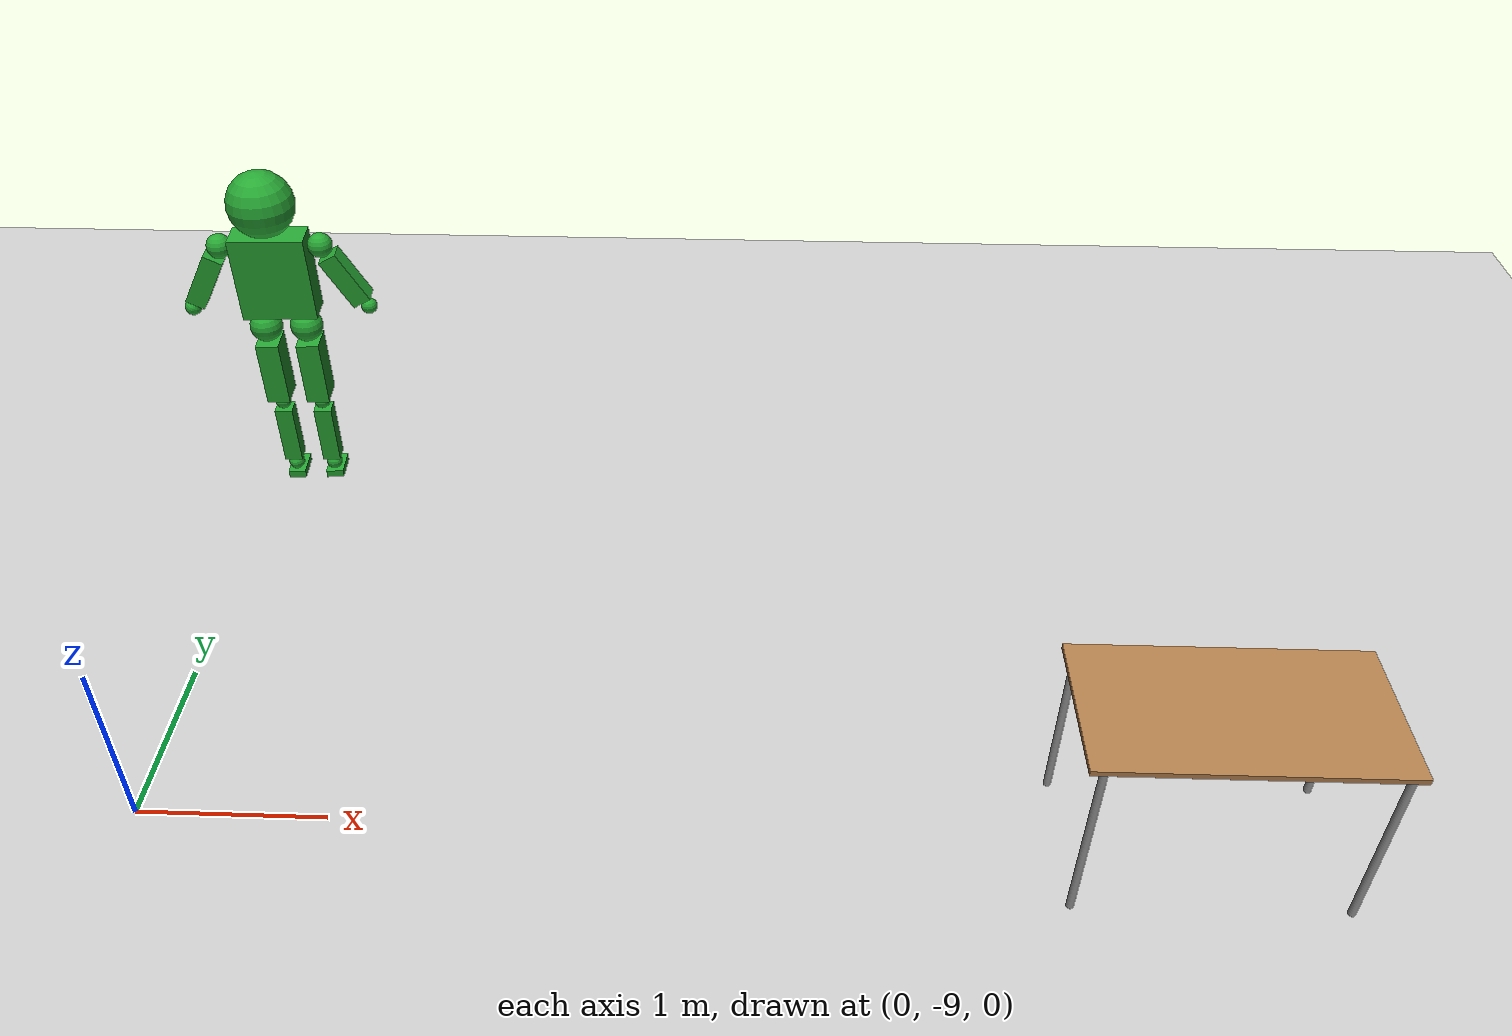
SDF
<sdf version="1.6">
 <world name="Apartment 1023">
  <model name="ground_plane">
   <static>1</static>
   <link name="link">
    <collision name="collision">
     <geometry><plane><normal>0 0 1</normal><size>100 100</size></plane></geometry>
     <surface><friction><ode><mu>100</mu><mu2>50</mu2></ode></friction></surface>
    </collision>
    <visual name="visual">
     <cast_shadows>0</cast_shadows>
     <geometry><plane><normal>0 0 1</normal><size>100 100</size></plane></geometry>
     <material>
      <script><uri>file://media/materials/scripts/gazebo.material</uri><name>Gazebo/Grey</name></script>
     </material>
    </visual>
   </link>
  </model>
  <model name="HumanoidRobot">
   <static>1</static>
   <link name="link_Foot_RT">
    <pose>0.98187 -0.173198 -0.379096 0 -0 0</pose>
    <inertial>
     <mass>1</mass>
     <inertia>
      <ixx>0.166667</ixx>
      <ixy>0</ixy>
      <ixz>0</ixz>
      <iyy>0.166667</iyy>
      <iyz>0</iyz>
      <izz>0.166667</izz>
     </inertia>
    </inertial>
    <visual name="visual">
     <geometry><box><size>0.19 0.11 0.05</size></box></geometry>
     <material>
      <lighting>1</lighting>
      <script><uri>file://media/materials/scripts/gazebo.material</uri><name>Gazebo/Green</name></script>
      <emissive>0 0 0 1</emissive>
      <shader type="vertex"><normal_map>__default__</normal_map></shader>
     </material>
    </visual>
    <collision name="collision">
     <geometry><box><size>0.19 0.11 0.05</size></box></geometry>
     <surface>
      <friction>
       <ode><mu>1</mu><mu2>1</mu2><fdir1>0 0 0</fdir1><slip1>0</slip1><slip2>0</slip2></ode>
       <torsional>
        <coefficient>1</coefficient>
        <patch_radius>0</patch_radius>
        <surface_radius>0</surface_radius>
        <use_patch_radius>1</use_patch_radius>
        <ode><slip>0</slip></ode>
       </torsional>
      </friction>
      <bounce><restitution_coefficient>0</restitution_coefficient><threshold>1e+06</threshold></bounce>
      <contact>
       <collide_without_contact>0</collide_without_contact>
       <collide_without_contact_bitmask>1</collide_without_contact_bitmask>
       <collide_bitmask>1</collide_bitmask>
       <ode>
        <soft_cfm>0</soft_cfm>
        <soft_erp>0.2</soft_erp>
        <kp>1e+13</kp>
        <kd>1</kd>
        <max_vel>0.01</max_vel>
        <min_depth>0</min_depth>
       </ode>
       <bullet>
        <split_impulse>1</split_impulse>
        <split_impulse_penetration_threshold>-0.01</split_impulse_penetration_threshold>
        <soft_cfm>0</soft_cfm>
        <soft_erp>0.2</soft_erp>
        <kp>1e+13</kp>
        <kd>1</kd>
       </bullet>
      </contact>
     </surface>
    </collision>
   </link>
   <link name="link_Ankle_RT">
    <pose>0.93687 -0.173198 -0.304096 0 -0 0</pose>
    <inertial>
     <mass>1</mass>
     <inertia><ixx>0.1</ixx><ixy>0</ixy><ixz>0</ixz><iyy>0.1</iyy><iyz>0</iyz><izz>0.1</izz></inertia>
    </inertial>
    <visual name="visual">
     <geometry><sphere><radius>0.05</radius></sphere></geometry>
     <material>
      <lighting>1</lighting>
      <script><uri>file://media/materials/scripts/gazebo.material</uri><name>Gazebo/Green</name></script>
      <emissive>0 0 0 1</emissive>
      <shader type="vertex"><normal_map>__default__</normal_map></shader>
     </material>
    </visual>
    <collision name="collision">
     <geometry><sphere><radius>0.05</radius></sphere></geometry>
     <surface>
      <friction>
       <ode><mu>1</mu><mu2>1</mu2><fdir1>0 0 0</fdir1><slip1>0</slip1><slip2>0</slip2></ode>
       <torsional>
        <coefficient>1</coefficient>
        <patch_radius>0</patch_radius>
        <surface_radius>0</surface_radius>
        <use_patch_radius>1</use_patch_radius>
        <ode><slip>0</slip></ode>
       </torsional>
      </friction>
      <bounce><restitution_coefficient>0</restitution_coefficient><threshold>1e+06</threshold></bounce>
      <contact>
       <collide_without_contact>0</collide_without_contact>
       <collide_without_contact_bitmask>1</collide_without_contact_bitmask>
       <collide_bitmask>1</collide_bitmask>
       <ode>
        <soft_cfm>0</soft_cfm>
        <soft_erp>0.2</soft_erp>
        <kp>1e+13</kp>
        <kd>1</kd>
        <max_vel>0.01</max_vel>
        <min_depth>0</min_depth>
       </ode>
       <bullet>
        <split_impulse>1</split_impulse>
        <split_impulse_penetration_threshold>-0.01</split_impulse_penetration_threshold>
        <soft_cfm>0</soft_cfm>
        <soft_erp>0.2</soft_erp>
        <kp>1e+13</kp>
        <kd>1</kd>
       </bullet>
      </contact>
     </surface>
    </collision>
   </link>
   <link name="link_Ankle_LT">
    <pose>0.939823 0.076802 -0.3041 0 -0 0</pose>
    <inertial>
     <mass>1</mass>
     <inertia><ixx>0.1</ixx><ixy>0</ixy><ixz>0</ixz><iyy>0.1</iyy><iyz>0</iyz><izz>0.1</izz></inertia>
    </inertial>
    <visual name="visual">
     <geometry><sphere><radius>0.05</radius></sphere></geometry>
     <material>
      <lighting>1</lighting>
      <script><uri>file://media/materials/scripts/gazebo.material</uri><name>Gazebo/Green</name></script>
      <emissive>0 0 0 1</emissive>
      <shader type="vertex"><normal_map>__default__</normal_map></shader>
     </material>
    </visual>
    <collision name="collision">
     <geometry><sphere><radius>0.05</radius></sphere></geometry>
     <surface>
      <friction>
       <ode><mu>1</mu><mu2>1</mu2><fdir1>0 0 0</fdir1><slip1>0</slip1><slip2>0</slip2></ode>
       <torsional>
        <coefficient>1</coefficient>
        <patch_radius>0</patch_radius>
        <surface_radius>0</surface_radius>
        <use_patch_radius>1</use_patch_radius>
        <ode><slip>0</slip></ode>
       </torsional>
      </friction>
      <bounce><restitution_coefficient>0</restitution_coefficient><threshold>1e+06</threshold></bounce>
      <contact>
       <collide_without_contact>0</collide_without_contact>
       <collide_without_contact_bitmask>1</collide_without_contact_bitmask>
       <collide_bitmask>1</collide_bitmask>
       <ode>
        <soft_cfm>0</soft_cfm>
        <soft_erp>0.2</soft_erp>
        <kp>1e+13</kp>
        <kd>1</kd>
        <max_vel>0.01</max_vel>
        <min_depth>0</min_depth>
       </ode>
       <bullet>
        <split_impulse>1</split_impulse>
        <split_impulse_penetration_threshold>-0.01</split_impulse_penetration_threshold>
        <soft_cfm>0</soft_cfm>
        <soft_erp>0.2</soft_erp>
        <kp>1e+13</kp>
        <kd>1</kd>
       </bullet>
      </contact>
     </surface>
    </collision>
   </link>
   <link name="link_Arm_RT">
    <pose>0.93687 -0.468195 1.0909 -0.5 0 0</pose>
    <inertial>
     <mass>1</mass>
     <inertia>
      <ixx>0.166667</ixx>
      <ixy>0</ixy>
      <ixz>0</ixz>
      <iyy>0.166667</iyy>
      <iyz>0</iyz>
      <izz>0.166667</izz>
     </inertia>
    </inertial>
    <visual name="visual">
     <geometry><box><size>0.12 0.12 0.35</size></box></geometry>
     <material>
      <lighting>1</lighting>
      <script><uri>file://media/materials/scripts/gazebo.material</uri><name>Gazebo/Green</name></script>
      <emissive>0 0 0 1</emissive>
      <shader type="vertex"><normal_map>__default__</normal_map></shader>
     </material>
    </visual>
    <collision name="collision">
     <geometry><box><size>0.12 0.12 0.35</size></box></geometry>
     <surface>
      <friction>
       <ode><mu>1</mu><mu2>1</mu2><fdir1>0 0 0</fdir1><slip1>0</slip1><slip2>0</slip2></ode>
       <torsional>
        <coefficient>1</coefficient>
        <patch_radius>0</patch_radius>
        <surface_radius>0</surface_radius>
        <use_patch_radius>1</use_patch_radius>
        <ode><slip>0</slip></ode>
       </torsional>
      </friction>
      <bounce><restitution_coefficient>0</restitution_coefficient><threshold>1e+06</threshold></bounce>
      <contact>
       <collide_without_contact>0</collide_without_contact>
       <collide_without_contact_bitmask>1</collide_without_contact_bitmask>
       <collide_bitmask>1</collide_bitmask>
       <ode>
        <soft_cfm>0</soft_cfm>
        <soft_erp>0.2</soft_erp>
        <kp>1e+13</kp>
        <kd>1</kd>
        <max_vel>0.01</max_vel>
        <min_depth>0</min_depth>
       </ode>
       <bullet>
        <split_impulse>1</split_impulse>
        <split_impulse_penetration_threshold>-0.01</split_impulse_penetration_threshold>
        <soft_cfm>0</soft_cfm>
        <soft_erp>0.2</soft_erp>
        <kp>1e+13</kp>
        <kd>1</kd>
       </bullet>
      </contact>
     </surface>
    </collision>
   </link>
   <link name="link_Arm_LT">
    <pose>0.939823 0.376802 1.0909 0.5 -0 0</pose>
    <inertial>
     <mass>1</mass>
     <inertia>
      <ixx>0.166667</ixx>
      <ixy>0</ixy>
      <ixz>0</ixz>
      <iyy>0.166667</iyy>
      <iyz>0</iyz>
      <izz>0.166667</izz>
     </inertia>
    </inertial>
    <visual name="visual">
     <geometry><box><size>0.12 0.12 0.35</size></box></geometry>
     <material>
      <lighting>1</lighting>
      <script><uri>file://media/materials/scripts/gazebo.material</uri><name>Gazebo/Green</name></script>
      <emissive>0 0 0 1</emissive>
      <shader type="vertex"><normal_map>__default__</normal_map></shader>
     </material>
    </visual>
    <collision name="collision">
     <geometry><box><size>0.12 0.12 0.35</size></box></geometry>
     <surface>
      <friction>
       <ode><mu>1</mu><mu2>1</mu2><fdir1>0 0 0</fdir1><slip1>0</slip1><slip2>0</slip2></ode>
       <torsional>
        <coefficient>1</coefficient>
        <patch_radius>0</patch_radius>
        <surface_radius>0</surface_radius>
        <use_patch_radius>1</use_patch_radius>
        <ode><slip>0</slip></ode>
       </torsional>
      </friction>
      <bounce><restitution_coefficient>0</restitution_coefficient><threshold>1e+06</threshold></bounce>
      <contact>
       <collide_without_contact>0</collide_without_contact>
       <collide_without_contact_bitmask>1</collide_without_contact_bitmask>
       <collide_bitmask>1</collide_bitmask>
       <ode>
        <soft_cfm>0</soft_cfm>
        <soft_erp>0.2</soft_erp>
        <kp>1e+13</kp>
        <kd>1</kd>
        <max_vel>0.01</max_vel>
        <min_depth>0</min_depth>
       </ode>
       <bullet>
        <split_impulse>1</split_impulse>
        <split_impulse_penetration_threshold>-0.01</split_impulse_penetration_threshold>
        <soft_cfm>0</soft_cfm>
        <soft_erp>0.2</soft_erp>
        <kp>1e+13</kp>
        <kd>1</kd>
       </bullet>
      </contact>
     </surface>
    </collision>
   </link>
   <link name="link_Calf_RT">
    <pose>0.93687 -0.173198 -0.059096 0 -0 0</pose>
    <inertial>
     <mass>1</mass>
     <inertia>
      <ixx>0.166667</ixx>
      <ixy>0</ixy>
      <ixz>0</ixz>
      <iyy>0.166667</iyy>
      <iyz>0</iyz>
      <izz>0.166667</izz>
     </inertia>
    </inertial>
    <visual name="visual">
     <geometry><box><size>0.11 0.11 0.39</size></box></geometry>
     <material>
      <lighting>1</lighting>
      <script><uri>file://media/materials/scripts/gazebo.material</uri><name>Gazebo/Green</name></script>
      <emissive>0 0 0 1</emissive>
      <shader type="vertex"><normal_map>__default__</normal_map></shader>
     </material>
    </visual>
    <collision name="collision">
     <geometry><box><size>0.11 0.11 0.39</size></box></geometry>
     <surface>
      <friction>
       <ode><mu>1</mu><mu2>1</mu2><fdir1>0 0 0</fdir1><slip1>0</slip1><slip2>0</slip2></ode>
       <torsional>
        <coefficient>1</coefficient>
        <patch_radius>0</patch_radius>
        <surface_radius>0</surface_radius>
        <use_patch_radius>1</use_patch_radius>
        <ode><slip>0</slip></ode>
       </torsional>
      </friction>
      <bounce><restitution_coefficient>0</restitution_coefficient><threshold>1e+06</threshold></bounce>
      <contact>
       <collide_without_contact>0</collide_without_contact>
       <collide_without_contact_bitmask>1</collide_without_contact_bitmask>
       <collide_bitmask>1</collide_bitmask>
       <ode>
        <soft_cfm>0</soft_cfm>
        <soft_erp>0.2</soft_erp>
        <kp>1e+13</kp>
        <kd>1</kd>
        <max_vel>0.01</max_vel>
        <min_depth>0</min_depth>
       </ode>
       <bullet>
        <split_impulse>1</split_impulse>
        <split_impulse_penetration_threshold>-0.01</split_impulse_penetration_threshold>
        <soft_cfm>0</soft_cfm>
        <soft_erp>0.2</soft_erp>
        <kp>1e+13</kp>
        <kd>1</kd>
       </bullet>
      </contact>
     </surface>
    </collision>
   </link>
   <link name="link_Calf_LT">
    <pose>0.939823 0.076802 -0.0591 0 -0 0</pose>
    <inertial>
     <mass>1</mass>
     <inertia>
      <ixx>0.166667</ixx>
      <ixy>0</ixy>
      <ixz>0</ixz>
      <iyy>0.166667</iyy>
      <iyz>0</iyz>
      <izz>0.166667</izz>
     </inertia>
    </inertial>
    <visual name="visual">
     <geometry><box><size>0.11 0.11 0.39</size></box></geometry>
     <material>
      <lighting>1</lighting>
      <script><uri>file://media/materials/scripts/gazebo.material</uri><name>Gazebo/Green</name></script>
      <emissive>0 0 0 1</emissive>
      <shader type="vertex"><normal_map>__default__</normal_map></shader>
     </material>
    </visual>
    <collision name="collision">
     <geometry><box><size>0.11 0.11 0.39</size></box></geometry>
     <surface>
      <friction>
       <ode><mu>1</mu><mu2>1</mu2><fdir1>0 0 0</fdir1><slip1>0</slip1><slip2>0</slip2></ode>
       <torsional>
        <coefficient>1</coefficient>
        <patch_radius>0</patch_radius>
        <surface_radius>0</surface_radius>
        <use_patch_radius>1</use_patch_radius>
        <ode><slip>0</slip></ode>
       </torsional>
      </friction>
      <bounce><restitution_coefficient>0</restitution_coefficient><threshold>1e+06</threshold></bounce>
      <contact>
       <collide_without_contact>0</collide_without_contact>
       <collide_without_contact_bitmask>1</collide_without_contact_bitmask>
       <collide_bitmask>1</collide_bitmask>
       <ode>
        <soft_cfm>0</soft_cfm>
        <soft_erp>0.2</soft_erp>
        <kp>1e+13</kp>
        <kd>1</kd>
        <max_vel>0.01</max_vel>
        <min_depth>0</min_depth>
       </ode>
       <bullet>
        <split_impulse>1</split_impulse>
        <split_impulse_penetration_threshold>-0.01</split_impulse_penetration_threshold>
        <soft_cfm>0</soft_cfm>
        <soft_erp>0.2</soft_erp>
        <kp>1e+13</kp>
        <kd>1</kd>
       </bullet>
      </contact>
     </surface>
    </collision>
   </link>
   <link name="link_Foot_LT">
    <pose>0.984823 0.076802 -0.3791 0 -0 0</pose>
    <inertial>
     <mass>1</mass>
     <inertia>
      <ixx>0.166667</ixx>
      <ixy>0</ixy>
      <ixz>0</ixz>
      <iyy>0.166667</iyy>
      <iyz>0</iyz>
      <izz>0.166667</izz>
     </inertia>
    </inertial>
    <visual name="visual">
     <geometry><box><size>0.19 0.11 0.05</size></box></geometry>
     <material>
      <lighting>1</lighting>
      <script><uri>file://media/materials/scripts/gazebo.material</uri><name>Gazebo/Green</name></script>
      <emissive>0 0 0 1</emissive>
      <shader type="vertex"><normal_map>__default__</normal_map></shader>
     </material>
    </visual>
    <collision name="collision">
     <geometry><box><size>0.19 0.11 0.05</size></box></geometry>
     <surface>
      <friction>
       <ode><mu>1</mu><mu2>1</mu2><fdir1>0 0 0</fdir1><slip1>0</slip1><slip2>0</slip2></ode>
       <torsional>
        <coefficient>1</coefficient>
        <patch_radius>0</patch_radius>
        <surface_radius>0</surface_radius>
        <use_patch_radius>1</use_patch_radius>
        <ode><slip>0</slip></ode>
       </torsional>
      </friction>
      <bounce><restitution_coefficient>0</restitution_coefficient><threshold>1e+06</threshold></bounce>
      <contact>
       <collide_without_contact>0</collide_without_contact>
       <collide_without_contact_bitmask>1</collide_without_contact_bitmask>
       <collide_bitmask>1</collide_bitmask>
       <ode>
        <soft_cfm>0</soft_cfm>
        <soft_erp>0.2</soft_erp>
        <kp>1e+13</kp>
        <kd>1</kd>
        <max_vel>0.01</max_vel>
        <min_depth>0</min_depth>
       </ode>
       <bullet>
        <split_impulse>1</split_impulse>
        <split_impulse_penetration_threshold>-0.01</split_impulse_penetration_threshold>
        <soft_cfm>0</soft_cfm>
        <soft_erp>0.2</soft_erp>
        <kp>1e+13</kp>
        <kd>1</kd>
       </bullet>
      </contact>
     </surface>
    </collision>
   </link>
   <link name="link_Head">
    <pose>0.93687 -0.048198 1.5859 0 -0 0</pose>
    <inertial>
     <mass>1</mass>
     <inertia><ixx>0.1</ixx><ixy>0</ixy><ixz>0</ixz><iyy>0.1</iyy><iyz>0</iyz><izz>0.1</izz></inertia>
    </inertial>
    <visual name="visual">
     <geometry><sphere><radius>0.2</radius></sphere></geometry>
     <material>
      <lighting>1</lighting>
      <script><uri>file://media/materials/scripts/gazebo.material</uri><name>Gazebo/Green</name></script>
      <emissive>0 0 0 1</emissive>
      <shader type="vertex"><normal_map>__default__</normal_map></shader>
     </material>
    </visual>
    <collision name="collision">
     <geometry><sphere><radius>0.2</radius></sphere></geometry>
     <surface>
      <friction>
       <ode><mu>1</mu><mu2>1</mu2><fdir1>0 0 0</fdir1><slip1>0</slip1><slip2>0</slip2></ode>
       <torsional>
        <coefficient>1</coefficient>
        <patch_radius>0</patch_radius>
        <surface_radius>0</surface_radius>
        <use_patch_radius>1</use_patch_radius>
        <ode><slip>0</slip></ode>
       </torsional>
      </friction>
      <bounce><restitution_coefficient>0</restitution_coefficient><threshold>1e+06</threshold></bounce>
      <contact>
       <collide_without_contact>0</collide_without_contact>
       <collide_without_contact_bitmask>1</collide_without_contact_bitmask>
       <collide_bitmask>1</collide_bitmask>
       <ode>
        <soft_cfm>0</soft_cfm>
        <soft_erp>0.2</soft_erp>
        <kp>1e+13</kp>
        <kd>1</kd>
        <max_vel>0.01</max_vel>
        <min_depth>0</min_depth>
       </ode>
       <bullet>
        <split_impulse>1</split_impulse>
        <split_impulse_penetration_threshold>-0.01</split_impulse_penetration_threshold>
        <soft_cfm>0</soft_cfm>
        <soft_erp>0.2</soft_erp>
        <kp>1e+13</kp>
        <kd>1</kd>
       </bullet>
      </contact>
     </surface>
    </collision>
   </link>
   <link name="link_Hip_RT">
    <pose>0.93687 -0.173198 0.7559 0 -0 0</pose>
    <inertial>
     <mass>1</mass>
     <inertia><ixx>0.1</ixx><ixy>0</ixy><ixz>0</ixz><iyy>0.1</iyy><iyz>0</iyz><izz>0.1</izz></inertia>
    </inertial>
    <visual name="visual">
     <geometry><sphere><radius>0.1</radius></sphere></geometry>
     <material>
      <lighting>1</lighting>
      <script><uri>file://media/materials/scripts/gazebo.material</uri><name>Gazebo/Green</name></script>
      <emissive>0 0 0 1</emissive>
      <shader type="vertex"><normal_map>__default__</normal_map></shader>
     </material>
    </visual>
    <collision name="collision">
     <geometry><sphere><radius>0.1</radius></sphere></geometry>
     <surface>
      <friction>
       <ode><mu>1</mu><mu2>1</mu2><fdir1>0 0 0</fdir1><slip1>0</slip1><slip2>0</slip2></ode>
       <torsional>
        <coefficient>1</coefficient>
        <patch_radius>0</patch_radius>
        <surface_radius>0</surface_radius>
        <use_patch_radius>1</use_patch_radius>
        <ode><slip>0</slip></ode>
       </torsional>
      </friction>
      <bounce><restitution_coefficient>0</restitution_coefficient><threshold>1e+06</threshold></bounce>
      <contact>
       <collide_without_contact>0</collide_without_contact>
       <collide_without_contact_bitmask>1</collide_without_contact_bitmask>
       <collide_bitmask>1</collide_bitmask>
       <ode>
        <soft_cfm>0</soft_cfm>
        <soft_erp>0.2</soft_erp>
        <kp>1e+13</kp>
        <kd>1</kd>
        <max_vel>0.01</max_vel>
        <min_depth>0</min_depth>
       </ode>
       <bullet>
        <split_impulse>1</split_impulse>
        <split_impulse_penetration_threshold>-0.01</split_impulse_penetration_threshold>
        <soft_cfm>0</soft_cfm>
        <soft_erp>0.2</soft_erp>
        <kp>1e+13</kp>
        <kd>1</kd>
       </bullet>
      </contact>
     </surface>
    </collision>
   </link>
   <link name="link_Hip_LT">
    <pose>0.939823 0.076802 0.7559 0 -0 0</pose>
    <inertial>
     <mass>1</mass>
     <inertia><ixx>0.1</ixx><ixy>0</ixy><ixz>0</ixz><iyy>0.1</iyy><iyz>0</iyz><izz>0.1</izz></inertia>
    </inertial>
    <visual name="visual">
     <geometry><sphere><radius>0.1</radius></sphere></geometry>
     <material>
      <lighting>1</lighting>
      <script><uri>file://media/materials/scripts/gazebo.material</uri><name>Gazebo/Green</name></script>
      <emissive>0 0 0 1</emissive>
      <shader type="vertex"><normal_map>__default__</normal_map></shader>
     </material>
    </visual>
    <collision name="collision">
     <geometry><sphere><radius>0.1</radius></sphere></geometry>
     <surface>
      <friction>
       <ode><mu>1</mu><mu2>1</mu2><fdir1>0 0 0</fdir1><slip1>0</slip1><slip2>0</slip2></ode>
       <torsional>
        <coefficient>1</coefficient>
        <patch_radius>0</patch_radius>
        <surface_radius>0</surface_radius>
        <use_patch_radius>1</use_patch_radius>
        <ode><slip>0</slip></ode>
       </torsional>
      </friction>
      <bounce><restitution_coefficient>0</restitution_coefficient><threshold>1e+06</threshold></bounce>
      <contact>
       <collide_without_contact>0</collide_without_contact>
       <collide_without_contact_bitmask>1</collide_without_contact_bitmask>
       <collide_bitmask>1</collide_bitmask>
       <ode>
        <soft_cfm>0</soft_cfm>
        <soft_erp>0.2</soft_erp>
        <kp>1e+13</kp>
        <kd>1</kd>
        <max_vel>0.01</max_vel>
        <min_depth>0</min_depth>
       </ode>
       <bullet>
        <split_impulse>1</split_impulse>
        <split_impulse_penetration_threshold>-0.01</split_impulse_penetration_threshold>
        <soft_cfm>0</soft_cfm>
        <soft_erp>0.2</soft_erp>
        <kp>1e+13</kp>
        <kd>1</kd>
       </bullet>
      </contact>
     </surface>
    </collision>
   </link>
   <link name="link_Knee_RT">
    <pose>0.93687 -0.173198 0.185904 0 -0 0</pose>
    <inertial>
     <mass>1</mass>
     <inertia><ixx>0.1</ixx><ixy>0</ixy><ixz>0</ixz><iyy>0.1</iyy><iyz>0</iyz><izz>0.1</izz></inertia>
    </inertial>
    <visual name="visual">
     <geometry><sphere><radius>0.05</radius></sphere></geometry>
     <material>
      <lighting>1</lighting>
      <script><uri>file://media/materials/scripts/gazebo.material</uri><name>Gazebo/Green</name></script>
      <emissive>0 0 0 1</emissive>
      <shader type="vertex"><normal_map>__default__</normal_map></shader>
     </material>
    </visual>
    <collision name="collision">
     <geometry><sphere><radius>0.05</radius></sphere></geometry>
     <surface>
      <friction>
       <ode><mu>1</mu><mu2>1</mu2><fdir1>0 0 0</fdir1><slip1>0</slip1><slip2>0</slip2></ode>
       <torsional>
        <coefficient>1</coefficient>
        <patch_radius>0</patch_radius>
        <surface_radius>0</surface_radius>
        <use_patch_radius>1</use_patch_radius>
        <ode><slip>0</slip></ode>
       </torsional>
      </friction>
      <bounce><restitution_coefficient>0</restitution_coefficient><threshold>1e+06</threshold></bounce>
      <contact>
       <collide_without_contact>0</collide_without_contact>
       <collide_without_contact_bitmask>1</collide_without_contact_bitmask>
       <collide_bitmask>1</collide_bitmask>
       <ode>
        <soft_cfm>0</soft_cfm>
        <soft_erp>0.2</soft_erp>
        <kp>1e+13</kp>
        <kd>1</kd>
        <max_vel>0.01</max_vel>
        <min_depth>0</min_depth>
       </ode>
       <bullet>
        <split_impulse>1</split_impulse>
        <split_impulse_penetration_threshold>-0.01</split_impulse_penetration_threshold>
        <soft_cfm>0</soft_cfm>
        <soft_erp>0.2</soft_erp>
        <kp>1e+13</kp>
        <kd>1</kd>
       </bullet>
      </contact>
     </surface>
    </collision>
   </link>
   <link name="link_Knee_LT">
    <pose>0.939823 0.076802 0.1859 0 -0 0</pose>
    <inertial>
     <mass>1</mass>
     <inertia><ixx>0.1</ixx><ixy>0</ixy><ixz>0</ixz><iyy>0.1</iyy><iyz>0</iyz><izz>0.1</izz></inertia>
    </inertial>
    <visual name="visual">
     <geometry><sphere><radius>0.05</radius></sphere></geometry>
     <material>
      <lighting>1</lighting>
      <script><uri>file://media/materials/scripts/gazebo.material</uri><name>Gazebo/Green</name></script>
      <emissive>0 0 0 1</emissive>
      <shader type="vertex"><normal_map>__default__</normal_map></shader>
     </material>
    </visual>
    <collision name="collision">
     <geometry><sphere><radius>0.05</radius></sphere></geometry>
     <surface>
      <friction>
       <ode><mu>1</mu><mu2>1</mu2><fdir1>0 0 0</fdir1><slip1>0</slip1><slip2>0</slip2></ode>
       <torsional>
        <coefficient>1</coefficient>
        <patch_radius>0</patch_radius>
        <surface_radius>0</surface_radius>
        <use_patch_radius>1</use_patch_radius>
        <ode><slip>0</slip></ode>
       </torsional>
      </friction>
      <bounce><restitution_coefficient>0</restitution_coefficient><threshold>1e+06</threshold></bounce>
      <contact>
       <collide_without_contact>0</collide_without_contact>
       <collide_without_contact_bitmask>1</collide_without_contact_bitmask>
       <collide_bitmask>1</collide_bitmask>
       <ode>
        <soft_cfm>0</soft_cfm>
        <soft_erp>0.2</soft_erp>
        <kp>1e+13</kp>
        <kd>1</kd>
        <max_vel>0.01</max_vel>
        <min_depth>0</min_depth>
       </ode>
       <bullet>
        <split_impulse>1</split_impulse>
        <split_impulse_penetration_threshold>-0.01</split_impulse_penetration_threshold>
        <soft_cfm>0</soft_cfm>
        <soft_erp>0.2</soft_erp>
        <kp>1e+13</kp>
        <kd>1</kd>
       </bullet>
      </contact>
     </surface>
    </collision>
   </link>
   <link name="link_Shoulder_RT">
    <pose>0.93687 -0.348198 1.3109 0 -0 0</pose>
    <inertial>
     <mass>1</mass>
     <inertia><ixx>0.1</ixx><ixy>0</ixy><ixz>0</ixz><iyy>0.1</iyy><iyz>0</iyz><izz>0.1</izz></inertia>
    </inertial>
    <visual name="visual">
     <geometry><sphere><radius>0.075</radius></sphere></geometry>
     <material>
      <lighting>1</lighting>
      <script><uri>file://media/materials/scripts/gazebo.material</uri><name>Gazebo/Green</name></script>
      <emissive>0 0 0 1</emissive>
      <shader type="vertex"><normal_map>__default__</normal_map></shader>
     </material>
    </visual>
    <collision name="collision">
     <geometry><sphere><radius>0.075</radius></sphere></geometry>
     <surface>
      <friction>
       <ode><mu>1</mu><mu2>1</mu2><fdir1>0 0 0</fdir1><slip1>0</slip1><slip2>0</slip2></ode>
       <torsional>
        <coefficient>1</coefficient>
        <patch_radius>0</patch_radius>
        <surface_radius>0</surface_radius>
        <use_patch_radius>1</use_patch_radius>
        <ode><slip>0</slip></ode>
       </torsional>
      </friction>
      <bounce><restitution_coefficient>0</restitution_coefficient><threshold>1e+06</threshold></bounce>
      <contact>
       <collide_without_contact>0</collide_without_contact>
       <collide_without_contact_bitmask>1</collide_without_contact_bitmask>
       <collide_bitmask>1</collide_bitmask>
       <ode>
        <soft_cfm>0</soft_cfm>
        <soft_erp>0.2</soft_erp>
        <kp>1e+13</kp>
        <kd>1</kd>
        <max_vel>0.01</max_vel>
        <min_depth>0</min_depth>
       </ode>
       <bullet>
        <split_impulse>1</split_impulse>
        <split_impulse_penetration_threshold>-0.01</split_impulse_penetration_threshold>
        <soft_cfm>0</soft_cfm>
        <soft_erp>0.2</soft_erp>
        <kp>1e+13</kp>
        <kd>1</kd>
       </bullet>
      </contact>
     </surface>
    </collision>
   </link>
   <link name="link_Shoulder_LT">
    <pose>0.939823 0.251802 1.3109 0 -0 0</pose>
    <inertial>
     <mass>1</mass>
     <inertia><ixx>0.1</ixx><ixy>0</ixy><ixz>0</ixz><iyy>0.1</iyy><iyz>0</iyz><izz>0.1</izz></inertia>
    </inertial>
    <visual name="visual">
     <geometry><sphere><radius>0.075</radius></sphere></geometry>
     <material>
      <lighting>1</lighting>
      <script><uri>file://media/materials/scripts/gazebo.material</uri><name>Gazebo/Green</name></script>
      <emissive>0 0 0 1</emissive>
      <shader type="vertex"><normal_map>__default__</normal_map></shader>
     </material>
    </visual>
    <collision name="collision">
     <geometry><sphere><radius>0.075</radius></sphere></geometry>
     <surface>
      <friction>
       <ode><mu>1</mu><mu2>1</mu2><fdir1>0 0 0</fdir1><slip1>0</slip1><slip2>0</slip2></ode>
       <torsional>
        <coefficient>1</coefficient>
        <patch_radius>0</patch_radius>
        <surface_radius>0</surface_radius>
        <use_patch_radius>1</use_patch_radius>
        <ode><slip>0</slip></ode>
       </torsional>
      </friction>
      <bounce><restitution_coefficient>0</restitution_coefficient><threshold>1e+06</threshold></bounce>
      <contact>
       <collide_without_contact>0</collide_without_contact>
       <collide_without_contact_bitmask>1</collide_without_contact_bitmask>
       <collide_bitmask>1</collide_bitmask>
       <ode>
        <soft_cfm>0</soft_cfm>
        <soft_erp>0.2</soft_erp>
        <kp>1e+13</kp>
        <kd>1</kd>
        <max_vel>0.01</max_vel>
        <min_depth>0</min_depth>
       </ode>
       <bullet>
        <split_impulse>1</split_impulse>
        <split_impulse_penetration_threshold>-0.01</split_impulse_penetration_threshold>
        <soft_cfm>0</soft_cfm>
        <soft_erp>0.2</soft_erp>
        <kp>1e+13</kp>
        <kd>1</kd>
       </bullet>
      </contact>
     </surface>
    </collision>
   </link>
   <link name="link_Thigh_RT">
    <pose>0.93687 -0.173198 0.445904 0 -0 0</pose>
    <inertial>
     <mass>1</mass>
     <inertia>
      <ixx>0.166667</ixx>
      <ixy>0</ixy>
      <ixz>0</ixz>
      <iyy>0.166667</iyy>
      <iyz>0</iyz>
      <izz>0.166667</izz>
     </inertia>
    </inertial>
    <visual name="visual">
     <geometry><box><size>0.19 0.14 0.42</size></box></geometry>
     <material>
      <lighting>1</lighting>
      <script><uri>file://media/materials/scripts/gazebo.material</uri><name>Gazebo/Green</name></script>
      <emissive>0 0 0 1</emissive>
      <shader type="vertex"><normal_map>__default__</normal_map></shader>
     </material>
    </visual>
    <collision name="collision">
     <geometry><box><size>0.19 0.14 0.42</size></box></geometry>
     <surface>
      <friction>
       <ode><mu>1</mu><mu2>1</mu2><fdir1>0 0 0</fdir1><slip1>0</slip1><slip2>0</slip2></ode>
       <torsional>
        <coefficient>1</coefficient>
        <patch_radius>0</patch_radius>
        <surface_radius>0</surface_radius>
        <use_patch_radius>1</use_patch_radius>
        <ode><slip>0</slip></ode>
       </torsional>
      </friction>
      <bounce><restitution_coefficient>0</restitution_coefficient><threshold>1e+06</threshold></bounce>
      <contact>
       <collide_without_contact>0</collide_without_contact>
       <collide_without_contact_bitmask>1</collide_without_contact_bitmask>
       <collide_bitmask>1</collide_bitmask>
       <ode>
        <soft_cfm>0</soft_cfm>
        <soft_erp>0.2</soft_erp>
        <kp>1e+13</kp>
        <kd>1</kd>
        <max_vel>0.01</max_vel>
        <min_depth>0</min_depth>
       </ode>
       <bullet>
        <split_impulse>1</split_impulse>
        <split_impulse_penetration_threshold>-0.01</split_impulse_penetration_threshold>
        <soft_cfm>0</soft_cfm>
        <soft_erp>0.2</soft_erp>
        <kp>1e+13</kp>
        <kd>1</kd>
       </bullet>
      </contact>
     </surface>
    </collision>
   </link>
   <link name="link_Thigh_LT">
    <pose>0.939823 0.076802 0.4459 0 -0 0</pose>
    <inertial>
     <mass>1</mass>
     <inertia>
      <ixx>0.166667</ixx>
      <ixy>0</ixy>
      <ixz>0</ixz>
      <iyy>0.166667</iyy>
      <iyz>0</iyz>
      <izz>0.166667</izz>
     </inertia>
    </inertial>
    <visual name="visual">
     <geometry><box><size>0.19 0.14 0.42</size></box></geometry>
     <material>
      <lighting>1</lighting>
      <script><uri>file://media/materials/scripts/gazebo.material</uri><name>Gazebo/Green</name></script>
      <emissive>0 0 0 1</emissive>
      <shader type="vertex"><normal_map>__default__</normal_map></shader>
     </material>
    </visual>
    <collision name="collision">
     <geometry><box><size>0.19 0.14 0.42</size></box></geometry>
     <surface>
      <friction>
       <ode><mu>1</mu><mu2>1</mu2><fdir1>0 0 0</fdir1><slip1>0</slip1><slip2>0</slip2></ode>
       <torsional>
        <coefficient>1</coefficient>
        <patch_radius>0</patch_radius>
        <surface_radius>0</surface_radius>
        <use_patch_radius>1</use_patch_radius>
        <ode><slip>0</slip></ode>
       </torsional>
      </friction>
      <bounce><restitution_coefficient>0</restitution_coefficient><threshold>1e+06</threshold></bounce>
      <contact>
       <collide_without_contact>0</collide_without_contact>
       <collide_without_contact_bitmask>1</collide_without_contact_bitmask>
       <collide_bitmask>1</collide_bitmask>
       <ode>
        <soft_cfm>0</soft_cfm>
        <soft_erp>0.2</soft_erp>
        <kp>1e+13</kp>
        <kd>1</kd>
        <max_vel>0.01</max_vel>
        <min_depth>0</min_depth>
       </ode>
       <bullet>
        <split_impulse>1</split_impulse>
        <split_impulse_penetration_threshold>-0.01</split_impulse_penetration_threshold>
        <soft_cfm>0</soft_cfm>
        <soft_erp>0.2</soft_erp>
        <kp>1e+13</kp>
        <kd>1</kd>
       </bullet>
      </contact>
     </surface>
    </collision>
   </link>
   <link name="link_Torso_RT">
    <pose>0.93687 -0.048198 1.1209 0 -0 0</pose>
    <inertial>
     <mass>1</mass>
     <inertia>
      <ixx>0.166667</ixx>
      <ixy>0</ixy>
      <ixz>0</ixz>
      <iyy>0.166667</iyy>
      <iyz>0</iyz>
      <izz>0.166667</izz>
     </inertia>
    </inertial>
    <visual name="visual">
     <geometry><box><size>0.19 0.45 0.53</size></box></geometry>
     <material>
      <lighting>1</lighting>
      <script><uri>file://media/materials/scripts/gazebo.material</uri><name>Gazebo/Green</name></script>
      <emissive>0 0 0 1</emissive>
      <shader type="vertex"><normal_map>__default__</normal_map></shader>
     </material>
    </visual>
    <collision name="collision">
     <geometry><box><size>0.19 0.45 0.53</size></box></geometry>
     <surface>
      <friction>
       <ode><mu>1</mu><mu2>1</mu2><fdir1>0 0 0</fdir1><slip1>0</slip1><slip2>0</slip2></ode>
       <torsional>
        <coefficient>1</coefficient>
        <patch_radius>0</patch_radius>
        <surface_radius>0</surface_radius>
        <use_patch_radius>1</use_patch_radius>
        <ode><slip>0</slip></ode>
       </torsional>
      </friction>
      <bounce><restitution_coefficient>0</restitution_coefficient><threshold>1e+06</threshold></bounce>
      <contact>
       <collide_without_contact>0</collide_without_contact>
       <collide_without_contact_bitmask>1</collide_without_contact_bitmask>
       <collide_bitmask>1</collide_bitmask>
       <ode>
        <soft_cfm>0</soft_cfm>
        <soft_erp>0.2</soft_erp>
        <kp>1e+13</kp>
        <kd>1</kd>
        <max_vel>0.01</max_vel>
        <min_depth>0</min_depth>
       </ode>
       <bullet>
        <split_impulse>1</split_impulse>
        <split_impulse_penetration_threshold>-0.01</split_impulse_penetration_threshold>
        <soft_cfm>0</soft_cfm>
        <soft_erp>0.2</soft_erp>
        <kp>1e+13</kp>
        <kd>1</kd>
       </bullet>
      </contact>
     </surface>
    </collision>
   </link>
   <link name="link_Wrist_RT">
    <pose>0.93687 -0.578466 0.88906 0 -0 0</pose>
    <inertial>
     <mass>1</mass>
     <inertia><ixx>0.1</ixx><ixy>0</ixy><ixz>0</ixz><iyy>0.1</iyy><iyz>0</iyz><izz>0.1</izz></inertia>
    </inertial>
    <visual name="visual">
     <geometry><sphere><radius>0.05</radius></sphere></geometry>
     <material>
      <lighting>1</lighting>
      <script><uri>file://media/materials/scripts/gazebo.material</uri><name>Gazebo/Green</name></script>
      <emissive>0 0 0 1</emissive>
      <shader type="vertex"><normal_map>__default__</normal_map></shader>
     </material>
    </visual>
    <collision name="collision">
     <geometry><sphere><radius>0.05</radius></sphere></geometry>
     <surface>
      <friction>
       <ode><mu>1</mu><mu2>1</mu2><fdir1>0 0 0</fdir1><slip1>0</slip1><slip2>0</slip2></ode>
       <torsional>
        <coefficient>1</coefficient>
        <patch_radius>0</patch_radius>
        <surface_radius>0</surface_radius>
        <use_patch_radius>1</use_patch_radius>
        <ode><slip>0</slip></ode>
       </torsional>
      </friction>
      <bounce><restitution_coefficient>0</restitution_coefficient><threshold>1e+06</threshold></bounce>
      <contact>
       <collide_without_contact>0</collide_without_contact>
       <collide_without_contact_bitmask>1</collide_without_contact_bitmask>
       <collide_bitmask>1</collide_bitmask>
       <ode>
        <soft_cfm>0</soft_cfm>
        <soft_erp>0.2</soft_erp>
        <kp>1e+13</kp>
        <kd>1</kd>
        <max_vel>0.01</max_vel>
        <min_depth>0</min_depth>
       </ode>
       <bullet>
        <split_impulse>1</split_impulse>
        <split_impulse_penetration_threshold>-0.01</split_impulse_penetration_threshold>
        <soft_cfm>0</soft_cfm>
        <soft_erp>0.2</soft_erp>
        <kp>1e+13</kp>
        <kd>1</kd>
       </bullet>
      </contact>
     </surface>
    </collision>
   </link>
   <link name="link_Wrist_LT">
    <pose>0.939823 0.493652 0.892652 0.5 -0 0</pose>
    <inertial>
     <mass>1</mass>
     <inertia><ixx>0.1</ixx><ixy>0</ixy><ixz>0</ixz><iyy>0.1</iyy><iyz>0</iyz><izz>0.1</izz></inertia>
    </inertial>
    <visual name="visual">
     <geometry><sphere><radius>0.05</radius></sphere></geometry>
     <material>
      <lighting>1</lighting>
      <script><uri>file://media/materials/scripts/gazebo.material</uri><name>Gazebo/Green</name></script>
      <emissive>0 0 0 1</emissive>
      <shader type="vertex"><normal_map>__default__</normal_map></shader>
     </material>
    </visual>
    <collision name="collision">
     <geometry><sphere><radius>0.05</radius></sphere></geometry>
     <surface>
      <friction>
       <ode><mu>1</mu><mu2>1</mu2><fdir1>0 0 0</fdir1><slip1>0</slip1><slip2>0</slip2></ode>
       <torsional>
        <coefficient>1</coefficient>
        <patch_radius>0</patch_radius>
        <surface_radius>0</surface_radius>
        <use_patch_radius>1</use_patch_radius>
        <ode><slip>0</slip></ode>
       </torsional>
      </friction>
      <bounce><restitution_coefficient>0</restitution_coefficient><threshold>1e+06</threshold></bounce>
      <contact>
       <collide_without_contact>0</collide_without_contact>
       <collide_without_contact_bitmask>1</collide_without_contact_bitmask>
       <collide_bitmask>1</collide_bitmask>
       <ode>
        <soft_cfm>0</soft_cfm>
        <soft_erp>0.2</soft_erp>
        <kp>1e+13</kp>
        <kd>1</kd>
        <max_vel>0.01</max_vel>
        <min_depth>0</min_depth>
       </ode>
       <bullet>
        <split_impulse>1</split_impulse>
        <split_impulse_penetration_threshold>-0.01</split_impulse_penetration_threshold>
        <soft_cfm>0</soft_cfm>
        <soft_erp>0.2</soft_erp>
        <kp>1e+13</kp>
        <kd>1</kd>
       </bullet>
      </contact>
     </surface>
    </collision>
   </link>
   <joint name="link_Ankle_RT_JOINT_3" type="ball">
    <parent>link_Ankle_RT</parent>
    <child>link_Calf_RT</child>
    <physics>
     <ode><limit><cfm>0</cfm><erp>0.2</erp></limit><suspension><cfm>0</cfm><erp>0.2</erp></suspension></ode>
    </physics>
   </joint>
   <joint name="link_Ankle_LT_JOINT_8" type="revolute">
    <parent>link_Ankle_LT</parent>
    <child>link_Foot_LT</child>
    <axis>
     <xyz>1 0 0</xyz>
     <use_parent_model_frame>0</use_parent_model_frame>
     <limit>
      <lower>-1.79769e+308</lower>
      <upper>1.79769e+308</upper>
      <effort>-1</effort>
      <velocity>-1</velocity>
     </limit>
     <dynamics>
      <spring_reference>0</spring_reference>
      <spring_stiffness>0</spring_stiffness>
      <damping>0</damping>
     </dynamics>
    </axis>
    <physics>
     <ode><limit><cfm>0</cfm><erp>0.2</erp></limit><suspension><cfm>0</cfm><erp>0.2</erp></suspension></ode>
    </physics>
   </joint>
   <joint name="link_Arm_RT_JOINT_18" type="revolute">
    <parent>link_Arm_RT</parent>
    <child>link_Wrist_RT</child>
    <pose>0 0 0 0.5 -0 0</pose>
    <axis>
     <xyz>1 0 0</xyz>
     <use_parent_model_frame>0</use_parent_model_frame>
     <limit>
      <lower>-1.79769e+308</lower>
      <upper>1.79769e+308</upper>
      <effort>-1</effort>
      <velocity>-1</velocity>
     </limit>
     <dynamics>
      <spring_reference>0</spring_reference>
      <spring_stiffness>0</spring_stiffness>
      <damping>0</damping>
      <friction>0</friction>
     </dynamics>
    </axis>
    <physics>
     <ode><limit><cfm>0</cfm><erp>0.2</erp></limit><suspension><cfm>0</cfm><erp>0.2</erp></suspension></ode>
    </physics>
   </joint>
   <joint name="link_Arm_LT_JOINT_2" type="revolute">
    <parent>link_Arm_LT</parent>
    <child>link_Wrist_LT</child>
    <axis>
     <xyz>1 0 0</xyz>
     <use_parent_model_frame>0</use_parent_model_frame>
     <limit>
      <lower>-1.79769e+308</lower>
      <upper>1.79769e+308</upper>
      <effort>-1</effort>
      <velocity>-1</velocity>
     </limit>
     <dynamics>
      <spring_reference>0</spring_reference>
      <spring_stiffness>0</spring_stiffness>
      <damping>0</damping>
     </dynamics>
    </axis>
    <physics>
     <ode><limit><cfm>0</cfm><erp>0.2</erp></limit><suspension><cfm>0</cfm><erp>0.2</erp></suspension></ode>
    </physics>
   </joint>
   <joint name="link_Calf_RT_JOINT_4" type="ball">
    <parent>link_Calf_RT</parent>
    <child>link_Knee_RT</child>
    <physics>
     <ode><limit><cfm>0</cfm><erp>0.2</erp></limit><suspension><cfm>0</cfm><erp>0.2</erp></suspension></ode>
    </physics>
   </joint>
   <joint name="link_Calf_LT_JOINT_7" type="revolute">
    <parent>link_Calf_LT</parent>
    <child>link_Ankle_LT</child>
    <axis>
     <xyz>1 0 0</xyz>
     <use_parent_model_frame>0</use_parent_model_frame>
     <limit>
      <lower>-1.79769e+308</lower>
      <upper>1.79769e+308</upper>
      <effort>-1</effort>
      <velocity>-1</velocity>
     </limit>
     <dynamics>
      <spring_reference>0</spring_reference>
      <spring_stiffness>0</spring_stiffness>
      <damping>0</damping>
     </dynamics>
    </axis>
    <physics>
     <ode><limit><cfm>0</cfm><erp>0.2</erp></limit><suspension><cfm>0</cfm><erp>0.2</erp></suspension></ode>
    </physics>
   </joint>
   <joint name="link_Foot_RT_JOINT_2" type="ball">
    <parent>link_Foot_RT</parent>
    <child>link_Ankle_RT</child>
    <physics>
     <ode><limit><cfm>0</cfm><erp>0.2</erp></limit><suspension><cfm>0</cfm><erp>0.2</erp></suspension></ode>
    </physics>
   </joint>
   <joint name="link_Hip_RT_JOINT_13" type="ball">
    <parent>link_Hip_RT</parent>
    <child>link_Torso_RT</child>
    <physics>
     <ode><limit><cfm>0</cfm><erp>0.2</erp></limit><suspension><cfm>0</cfm><erp>0.2</erp></suspension></ode>
    </physics>
   </joint>
   <joint name="link_Hip_LT_JOINT_4" type="revolute">
    <parent>link_Hip_LT</parent>
    <child>link_Thigh_LT</child>
    <axis>
     <xyz>1 0 0</xyz>
     <use_parent_model_frame>0</use_parent_model_frame>
     <limit>
      <lower>-1.79769e+308</lower>
      <upper>1.79769e+308</upper>
      <effort>-1</effort>
      <velocity>-1</velocity>
     </limit>
     <dynamics>
      <spring_reference>0</spring_reference>
      <spring_stiffness>0</spring_stiffness>
      <damping>0</damping>
     </dynamics>
    </axis>
    <physics>
     <ode><limit><cfm>0</cfm><erp>0.2</erp></limit><suspension><cfm>0</cfm><erp>0.2</erp></suspension></ode>
    </physics>
   </joint>
   <joint name="link_Knee_RT_JOINT_6" type="ball">
    <parent>link_Knee_RT</parent>
    <child>link_Thigh_RT</child>
    <physics>
     <ode><limit><cfm>0</cfm><erp>0.2</erp></limit><suspension><cfm>0</cfm><erp>0.2</erp></suspension></ode>
    </physics>
   </joint>
   <joint name="link_Knee_LT_JOINT_6" type="revolute">
    <parent>link_Knee_LT</parent>
    <child>link_Calf_LT</child>
    <axis>
     <xyz>1 0 0</xyz>
     <use_parent_model_frame>0</use_parent_model_frame>
     <limit>
      <lower>-1.79769e+308</lower>
      <upper>1.79769e+308</upper>
      <effort>-1</effort>
      <velocity>-1</velocity>
     </limit>
     <dynamics>
      <spring_reference>0</spring_reference>
      <spring_stiffness>0</spring_stiffness>
      <damping>0</damping>
     </dynamics>
    </axis>
    <physics>
     <ode><limit><cfm>0</cfm><erp>0.2</erp></limit><suspension><cfm>0</cfm><erp>0.2</erp></suspension></ode>
    </physics>
   </joint>
   <joint name="link_Shoulder_RT_JOINT_16" type="revolute">
    <parent>link_Shoulder_RT</parent>
    <child>link_Arm_RT</child>
    <axis>
     <xyz>1 0 0</xyz>
     <use_parent_model_frame>0</use_parent_model_frame>
     <limit>
      <lower>-1.79769e+308</lower>
      <upper>1.79769e+308</upper>
      <effort>-1</effort>
      <velocity>-1</velocity>
     </limit>
     <dynamics>
      <spring_reference>0</spring_reference>
      <spring_stiffness>0</spring_stiffness>
      <damping>0</damping>
      <friction>0</friction>
     </dynamics>
    </axis>
    <physics>
     <ode><limit><cfm>0</cfm><erp>0.2</erp></limit><suspension><cfm>0</cfm><erp>0.2</erp></suspension></ode>
    </physics>
   </joint>
   <joint name="link_Shoulder_LT_JOINT_1" type="revolute">
    <parent>link_Shoulder_LT</parent>
    <child>link_Arm_LT</child>
    <pose>0 0 0 -0.5 0 0</pose>
    <axis>
     <xyz>1 0 0</xyz>
     <use_parent_model_frame>0</use_parent_model_frame>
     <limit>
      <lower>-1.79769e+308</lower>
      <upper>1.79769e+308</upper>
      <effort>-1</effort>
      <velocity>-1</velocity>
     </limit>
     <dynamics>
      <spring_reference>0</spring_reference>
      <spring_stiffness>0</spring_stiffness>
      <damping>0</damping>
     </dynamics>
    </axis>
    <physics>
     <ode><limit><cfm>0</cfm><erp>0.2</erp></limit><suspension><cfm>0</cfm><erp>0.2</erp></suspension></ode>
    </physics>
   </joint>
   <joint name="link_Thigh_RT_JOINT_8" type="revolute">
    <parent>link_Thigh_RT</parent>
    <child>link_Hip_RT</child>
    <axis>
     <xyz>1 0 0</xyz>
     <use_parent_model_frame>0</use_parent_model_frame>
     <limit>
      <lower>-1.79769e+308</lower>
      <upper>1.79769e+308</upper>
      <effort>-1</effort>
      <velocity>-1</velocity>
     </limit>
     <dynamics>
      <spring_reference>0</spring_reference>
      <spring_stiffness>0</spring_stiffness>
      <damping>0</damping>
      <friction>0</friction>
     </dynamics>
    </axis>
    <physics>
     <ode><limit><cfm>0</cfm><erp>0.2</erp></limit><suspension><cfm>0</cfm><erp>0.2</erp></suspension></ode>
    </physics>
   </joint>
   <joint name="link_Thigh_LT_JOINT_5" type="revolute">
    <parent>link_Thigh_LT</parent>
    <child>link_Knee_LT</child>
    <axis>
     <xyz>1 0 0</xyz>
     <use_parent_model_frame>0</use_parent_model_frame>
     <limit>
      <lower>-1.79769e+308</lower>
      <upper>1.79769e+308</upper>
      <effort>-1</effort>
      <velocity>-1</velocity>
     </limit>
     <dynamics>
      <spring_reference>0</spring_reference>
      <spring_stiffness>0</spring_stiffness>
      <damping>0</damping>
     </dynamics>
    </axis>
    <physics>
     <ode><limit><cfm>0</cfm><erp>0.2</erp></limit><suspension><cfm>0</cfm><erp>0.2</erp></suspension></ode>
    </physics>
   </joint>
   <joint name="link_Torso_RT_JOINT_0" type="ball">
    <parent>link_Torso_RT</parent>
    <child>link_Shoulder_LT</child>
    <physics>
     <ode><limit><cfm>0</cfm><erp>0.2</erp></limit><suspension><cfm>0</cfm><erp>0.2</erp></suspension></ode>
    </physics>
   </joint>
   <joint name="link_Torso_RT_JOINT_14" type="revolute">
    <parent>link_Torso_RT</parent>
    <child>link_Shoulder_RT</child>
    <axis>
     <xyz>1 0 0</xyz>
     <use_parent_model_frame>0</use_parent_model_frame>
     <limit>
      <lower>-1.79769e+308</lower>
      <upper>1.79769e+308</upper>
      <effort>-1</effort>
      <velocity>-1</velocity>
     </limit>
     <dynamics>
      <spring_reference>0</spring_reference>
      <spring_stiffness>0</spring_stiffness>
      <damping>0</damping>
      <friction>0</friction>
     </dynamics>
    </axis>
    <physics>
     <ode><limit><cfm>0</cfm><erp>0.2</erp></limit><suspension><cfm>0</cfm><erp>0.2</erp></suspension></ode>
    </physics>
   </joint>
   <joint name="link_Torso_RT_JOINT_20" type="revolute">
    <parent>link_Torso_RT</parent>
    <child>link_Head</child>
    <axis>
     <xyz>1 0 0</xyz>
     <use_parent_model_frame>0</use_parent_model_frame>
     <limit>
      <lower>-1.79769e+308</lower>
      <upper>1.79769e+308</upper>
      <effort>-1</effort>
      <velocity>-1</velocity>
     </limit>
     <dynamics>
      <spring_reference>0</spring_reference>
      <spring_stiffness>0</spring_stiffness>
      <damping>0</damping>
      <friction>0</friction>
     </dynamics>
    </axis>
    <physics>
     <ode><limit><cfm>0</cfm><erp>0.2</erp></limit><suspension><cfm>0</cfm><erp>0.2</erp></suspension></ode>
    </physics>
   </joint>
   <joint name="link_Torso_RT_JOINT_3" type="ball">
    <parent>link_Torso_RT</parent>
    <child>link_Hip_LT</child>
    <physics>
     <ode><limit><cfm>0</cfm><erp>0.2</erp></limit><suspension><cfm>0</cfm><erp>0.2</erp></suspension></ode>
    </physics>
   </joint>
   <static>0</static>
   <pose>0.25863 -7.07825 0.409205 0 -0 1.62744</pose>
  </model>
  <model name="table_0">
   <static>1</static>
   <link name="link">
    <collision name="surface">
     <pose>0 0 1 0 -0 0</pose>
     <geometry><box><size>1.5 0.8 0.03</size></box></geometry>
     <surface><friction><ode><mu>0.6</mu><mu2>0.6</mu2></ode></friction></surface>
    </collision>
    <visual name="visual1">
     <pose>0 0 1 0 -0 0</pose>
     <geometry><box><size>1.5 0.8 0.03</size></box></geometry>
     <material>
      <script><uri>file://media/materials/scripts/gazebo.material</uri><name>Gazebo/Wood</name></script>
     </material>
    </visual>
    <collision name="front_left_leg">
     <pose>0.68 0.38 0.5 0 -0 0</pose>
     <geometry><cylinder><radius>0.02</radius><length>1</length></cylinder></geometry>
    </collision>
    <visual name="front_left_leg">
     <pose>0.68 0.38 0.5 0 -0 0</pose>
     <geometry><cylinder><radius>0.02</radius><length>1</length></cylinder></geometry>
     <material>
      <script><uri>file://media/materials/scripts/gazebo.material</uri><name>Gazebo/Grey</name></script>
     </material>
    </visual>
    <collision name="front_right_leg">
     <pose>0.68 -0.38 0.5 0 -0 0</pose>
     <geometry><cylinder><radius>0.02</radius><length>1</length></cylinder></geometry>
    </collision>
    <visual name="front_right_leg">
     <pose>0.68 -0.38 0.5 0 -0 0</pose>
     <geometry><cylinder><radius>0.02</radius><length>1</length></cylinder></geometry>
     <material>
      <script><uri>file://media/materials/scripts/gazebo.material</uri><name>Gazebo/Grey</name></script>
     </material>
    </visual>
    <collision name="back_right_leg">
     <pose>-0.68 -0.38 0.5 0 -0 0</pose>
     <geometry><cylinder><radius>0.02</radius><length>1</length></cylinder></geometry>
    </collision>
    <visual name="back_right_leg">
     <pose>-0.68 -0.38 0.5 0 -0 0</pose>
     <geometry><cylinder><radius>0.02</radius><length>1</length></cylinder></geometry>
     <material>
      <script><uri>file://media/materials/scripts/gazebo.material</uri><name>Gazebo/Grey</name></script>
     </material>
    </visual>
    <collision name="back_left_leg">
     <pose>-0.68 0.38 0.5 0 -0 0</pose>
     <geometry><cylinder><radius>0.02</radius><length>1</length></cylinder></geometry>
    </collision>
    <visual name="back_left_leg">
     <pose>-0.68 0.38 0.5 0 -0 0</pose>
     <geometry><cylinder><radius>0.02</radius><length>1</length></cylinder></geometry>
     <material>
      <script><uri>file://media/materials/scripts/gazebo.material</uri><name>Gazebo/Grey</name></script>
     </material>
    </visual>
   </link>
   <pose>5.42659 -9.02582 0 0 -0 0</pose>
  </model>
 </world>
</sdf>
